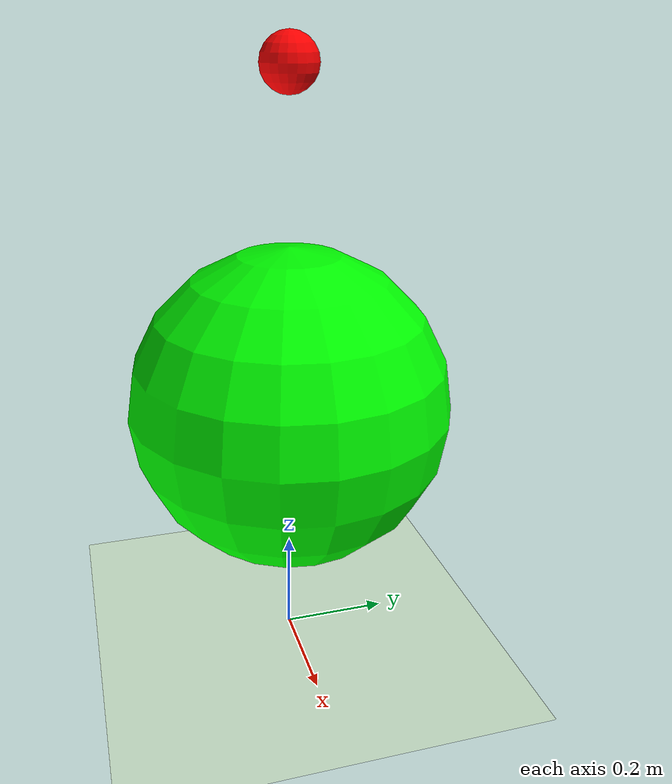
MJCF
<!-- most of the code is based on: differentialdrive.xml in  https://pab47.github.io/mujocopy.html -->
<mujoco model="wheel">
    <compiler inertiafromgeom="true" angle="degree" coordinate="local"/>
    <option timestep="0.01" integrator="RK4"/>
    <option gravity="0 0 -9.81"/>
    <visual>
        <global offwidth="480" offheight="480"/>
        <headlight active="0"/>
    </visual>
    <default>
        <geom condim="3" conaffinity="0" margin="0.01" friction="1 0.5 0.5" solref=".02 1" solimp=".8 .8 .01" rgba="0.8 0.6 0.4 1" density="5.0" />
    </default>
    <asset>
        <texture type="skybox" builtin="gradient" width="100" height="100" rgb1="1 1 1" rgb2="0 0 0"/>
        <texture name="texgeom" type="cube" builtin="flat" mark="cross" width="127" height="1278" rgb1="0.8 0.6 0.4" rgb2="0.8 0.6 0.4" markrgb="1 1 1" random="0.01"/>
        <texture name="texplane" type="2d" builtin="checker" rgb1="1 1 1" rgb2="1 1 1" width="100" height="100"/>
        <material name='MatPlane' texture="texplane" shininess="1" texrepeat="10 1" specular="1" reflectance="0.0"/>
        <material name='geom' texture="texgeom" texuniform="true"/>
    </asset>
    <worldbody>
        <light name="light" directional="true" cutoff="100" exponent="1" diffuse="1 1 1" specular=".1 .1 .1" pos="0 0 1.3" dir="-0 0 -0.3"/>
        <geom name='floor' material="MatPlane" pos='0 0 0' size='100 10 10' type='plane' conaffinity='1' rgba='0.8 0.9 0.8 1' condim='3'/>
        <body name="torso" pos="0 0 0.5" euler='0 0 0'>
            <joint name="root" type="free"/>
            <body name="agent_body">
                <camera name="track" mode="trackcom" pos="0 -4 0.3" xyaxes="1 0 0 0 0 1"/>
                <site name="camera_pos" rgba="1 0 0 1" pos="0 0 0.6" size="0.05"/>
                <geom type="sphere" size="0.3" rgba="0 1 0 1" mass="0.3"/>
                <site name="imu" pos="0 0 0"/>
            </body>
        </body>
    </worldbody>
    <actuator>
        <velocity name="motor0" joint="root" ctrllimited="true" ctrlrange="-1 1" gear="1 0 0 0 0 0"/>
        <velocity name="motor1" joint="root" ctrllimited="true" ctrlrange="-1 1" gear="0 1 0 0 0 0"/>
    </actuator>
    <sensor>
        <gyro          name="gyro" site="imu" noise="0.01" cutoff="34.9"/>
        <accelerometer name="accel" site="imu" noise="0.01" cutoff="157"/>
    </sensor>
</mujoco>
